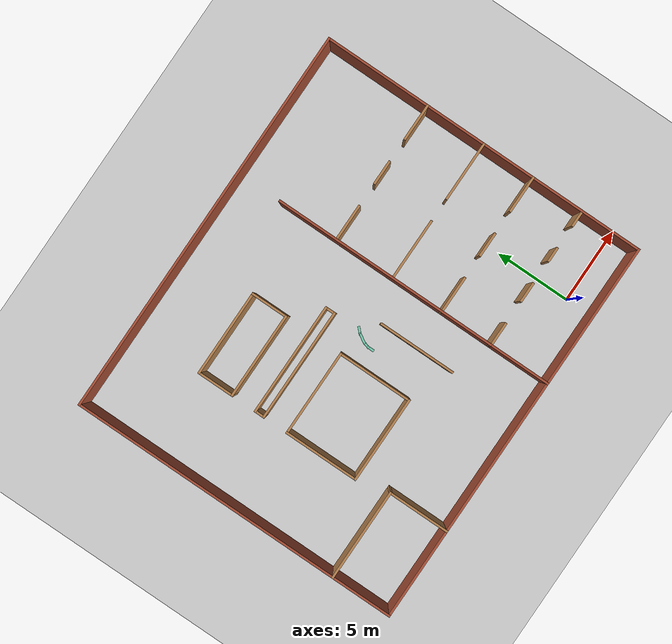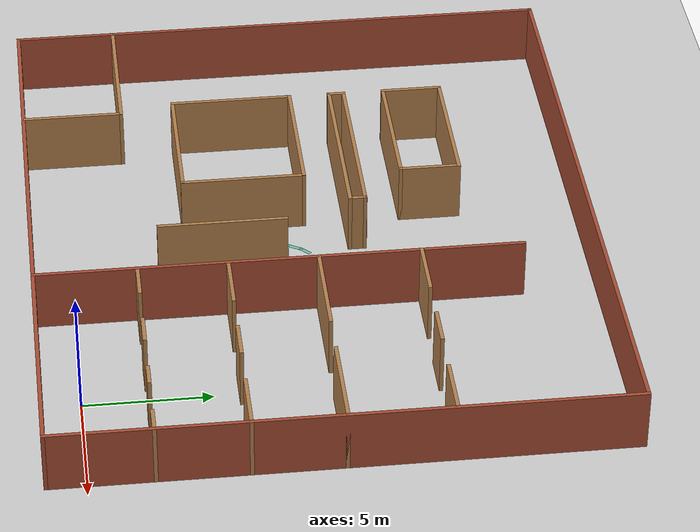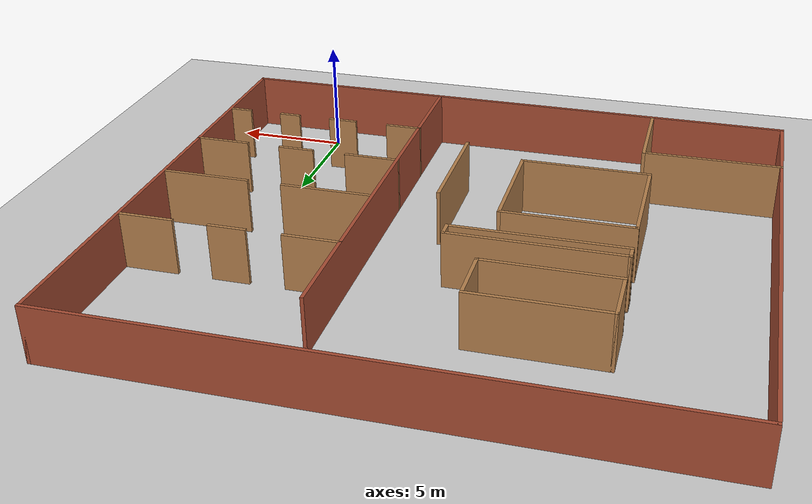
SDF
<sdf version="1.6">
 <world name="default">
  <model name="ground_plane">
   <static>1</static>
   <link name="link">
    <collision name="collision">
     <geometry><plane><normal>0 0 1</normal><size>100 100</size></plane></geometry>
     <surface><friction><ode><mu>100</mu><mu2>50</mu2></ode></friction></surface>
    </collision>
    <visual name="visual">
     <cast_shadows>0</cast_shadows>
     <geometry><plane><normal>0 0 1</normal><size>100 100</size></plane></geometry>
     <material>
      <script><uri>file://media/materials/scripts/gazebo.material</uri><name>Gazebo/Grey</name></script>
     </material>
    </visual>
   </link>
  </model>
  <model name="POMDP_test">
   <pose>-8.50001 9.50001 0 0 0 -3.14159</pose>
   <link name="Wall_11">
    <collision name="Wall_11_Collision">
     <geometry><box><size>5.75 0.15 2.5</size></box></geometry>
     <pose>0 0 1.25 0 -0 0</pose>
    </collision>
    <visual name="Wall_11_Visual">
     <pose>0 0 1.25 0 -0 0</pose>
     <geometry><box><size>5.75 0.15 2.5</size></box></geometry>
     <material>
      <script><uri>file://media/materials/scripts/gazebo.material</uri><name>Gazebo/Wood</name></script>
      <ambient>1 1 1 1</ambient>
     </material>
     <meta><layer>0</layer></meta>
    </visual>
    <pose>4.7 4.85 0 0 -0 0</pose>
   </link>
   <link name="Wall_12">
    <collision name="Wall_12_Collision">
     <geometry><box><size>5 0.15 2.5</size></box></geometry>
     <pose>0 0 1.25 0 -0 0</pose>
    </collision>
    <visual name="Wall_12_Visual">
     <pose>0 0 1.25 0 -0 0</pose>
     <geometry><box><size>5 0.15 2.5</size></box></geometry>
     <material>
      <script><uri>file://media/materials/scripts/gazebo.material</uri><name>Gazebo/Wood</name></script>
      <ambient>1 1 1 1</ambient>
     </material>
     <meta><layer>0</layer></meta>
    </visual>
    <pose>7.5 2.425 0 0 -0 -1.5708</pose>
   </link>
   <link name="Wall_13">
    <collision name="Wall_13_Collision">
     <geometry><box><size>5.75 0.15 2.5</size></box></geometry>
     <pose>0 0 1.25 0 -0 0</pose>
    </collision>
    <visual name="Wall_13_Visual">
     <pose>0 0 1.25 0 -0 0</pose>
     <geometry><box><size>5.75 0.15 2.5</size></box></geometry>
     <material>
      <script><uri>file://media/materials/scripts/gazebo.material</uri><name>Gazebo/Wood</name></script>
      <ambient>1 1 1 1</ambient>
     </material>
     <meta><layer>0</layer></meta>
    </visual>
    <pose>4.7 0 0 0 -0 3.14159</pose>
   </link>
   <link name="Wall_14">
    <collision name="Wall_14_Collision">
     <geometry><box><size>5 0.15 2.5</size></box></geometry>
     <pose>0 0 1.25 0 -0 0</pose>
    </collision>
    <visual name="Wall_14_Visual">
     <pose>0 0 1.25 0 -0 0</pose>
     <geometry><box><size>5 0.15 2.5</size></box></geometry>
     <material>
      <script><uri>file://media/materials/scripts/gazebo.material</uri><name>Gazebo/Wood</name></script>
      <ambient>1 1 1 1</ambient>
     </material>
     <meta><layer>0</layer></meta>
    </visual>
    <pose>1.9 2.425 0 0 -0 1.5708</pose>
   </link>
   <link name="Wall_18">
    <collision name="Wall_18_Collision">
     <geometry><box><size>7.5 0.15 2.5</size></box></geometry>
     <pose>0 0 1.25 0 -0 0</pose>
    </collision>
    <visual name="Wall_18_Visual">
     <pose>0 0 1.25 0 -0 0</pose>
     <geometry><box><size>7.5 0.15 2.5</size></box></geometry>
     <material>
      <script><uri>file://media/materials/scripts/gazebo.material</uri><name>Gazebo/Wood</name></script>
      <ambient>1 1 1 1</ambient>
     </material>
     <meta><layer>0</layer></meta>
    </visual>
    <pose>3.825 -1.65 0 0 -0 3.14159</pose>
   </link>
   <link name="Wall_19">
    <collision name="Wall_19_Collision">
     <geometry><box><size>0.75 0.15 2.5</size></box></geometry>
     <pose>0 0 1.25 0 -0 0</pose>
    </collision>
    <visual name="Wall_19_Visual">
     <pose>0 0 1.25 0 -0 0</pose>
     <geometry><box><size>0.75 0.15 2.5</size></box></geometry>
     <material>
      <script><uri>file://media/materials/scripts/gazebo.material</uri><name>Gazebo/Wood</name></script>
      <ambient>1 1 1 1</ambient>
     </material>
     <meta><layer>0</layer></meta>
    </visual>
    <pose>0.15 -1.95 0 0 -0 -1.5708</pose>
   </link>
   <link name="Wall_20">
    <collision name="Wall_20_Collision">
     <geometry><box><size>7.5 0.15 2.5</size></box></geometry>
     <pose>0 0 1.25 0 -0 0</pose>
    </collision>
    <visual name="Wall_20_Visual">
     <pose>0 0 1.25 0 -0 0</pose>
     <geometry><box><size>7.5 0.15 2.5</size></box></geometry>
     <material>
      <script><uri>file://media/materials/scripts/gazebo.material</uri><name>Gazebo/Wood</name></script>
      <ambient>1 1 1 1</ambient>
     </material>
     <meta><layer>0</layer></meta>
    </visual>
    <pose>3.825 -2.25 0 0 -0 0</pose>
   </link>
   <link name="Wall_21">
    <collision name="Wall_21_Collision">
     <geometry><box><size>0.75 0.15 2.5</size></box></geometry>
     <pose>0 0 1.25 0 -0 0</pose>
    </collision>
    <visual name="Wall_21_Visual">
     <pose>0 0 1.25 0 -0 0</pose>
     <geometry><box><size>0.75 0.15 2.5</size></box></geometry>
     <material>
      <script><uri>file://media/materials/scripts/gazebo.material</uri><name>Gazebo/Wood</name></script>
      <ambient>1 1 1 1</ambient>
     </material>
     <meta><layer>0</layer></meta>
    </visual>
    <pose>7.5 -1.95 0 0 -0 1.5708</pose>
   </link>
   <link name="Wall_25">
    <collision name="Wall_25_Collision">
     <geometry><box><size>5.75 0.15 2.5</size></box></geometry>
     <pose>0 0 1.25 0 -0 0</pose>
    </collision>
    <visual name="Wall_25_Visual">
     <pose>0 0 1.25 0 -0 0</pose>
     <geometry><box><size>5.75 0.15 2.5</size></box></geometry>
     <material>
      <script><uri>file://media/materials/scripts/gazebo.material</uri><name>Gazebo/Wood</name></script>
      <ambient>1 1 1 1</ambient>
     </material>
     <meta><layer>0</layer></meta>
    </visual>
    <pose>4.7 -3.9 0 0 -0 3.14159</pose>
   </link>
   <link name="Wall_27">
    <collision name="Wall_27_Collision">
     <geometry><box><size>2.5 0.15 2.5</size></box></geometry>
     <pose>0 0 1.25 0 -0 0</pose>
    </collision>
    <visual name="Wall_27_Visual">
     <pose>0 0 1.25 0 -0 0</pose>
     <geometry><box><size>2.5 0.15 2.5</size></box></geometry>
     <material>
      <script><uri>file://media/materials/scripts/gazebo.material</uri><name>Gazebo/Wood</name></script>
      <ambient>1 1 1 1</ambient>
     </material>
     <meta><layer>0</layer></meta>
    </visual>
    <pose>1.9 -5.075 0 0 -0 -1.5708</pose>
   </link>
   <link name="Wall_28">
    <collision name="Wall_28_Collision">
     <geometry><box><size>5.75 0.15 2.5</size></box></geometry>
     <pose>0 0 1.25 0 -0 0</pose>
    </collision>
    <visual name="Wall_28_Visual">
     <pose>0 0 1.25 0 -0 0</pose>
     <geometry><box><size>5.75 0.15 2.5</size></box></geometry>
     <material>
      <script><uri>file://media/materials/scripts/gazebo.material</uri><name>Gazebo/Wood</name></script>
      <ambient>1 1 1 1</ambient>
     </material>
     <meta><layer>0</layer></meta>
    </visual>
    <pose>4.7 -6.25 0 0 -0 0</pose>
   </link>
   <link name="Wall_29">
    <collision name="Wall_29_Collision">
     <geometry><box><size>2.5 0.15 2.5</size></box></geometry>
     <pose>0 0 1.25 0 -0 0</pose>
    </collision>
    <visual name="Wall_29_Visual">
     <pose>0 0 1.25 0 -0 0</pose>
     <geometry><box><size>2.5 0.15 2.5</size></box></geometry>
     <material>
      <script><uri>file://media/materials/scripts/gazebo.material</uri><name>Gazebo/Wood</name></script>
      <ambient>1 1 1 1</ambient>
     </material>
     <meta><layer>0</layer></meta>
    </visual>
    <pose>7.5 -5.075 0 0 -0 1.5708</pose>
   </link>
   <link name="Wall_33">
    <collision name="Wall_33_Collision">
     <geometry><box><size>19.15 0.15 2.5</size></box></geometry>
     <pose>0 0 1.25 0 -0 0</pose>
    </collision>
    <visual name="Wall_33_Visual">
     <pose>0 0 1.25 0 -0 0</pose>
     <geometry><box><size>19.15 0.15 2.5</size></box></geometry>
     <material>
      <script><uri>file://media/materials/scripts/gazebo.material</uri><name>Gazebo/Bricks</name></script>
      <ambient>1 1 1 1</ambient>
     </material>
     <meta><layer>0</layer></meta>
    </visual>
    <pose>-3.5 1.5 0 0 -0 1.5708</pose>
   </link>
   <link name="Wall_35">
    <collision name="Wall_35_Collision">
     <geometry><box><size>6.15 0.15 2.5</size></box></geometry>
     <pose>0 0 1.25 0 -0 0</pose>
    </collision>
    <visual name="Wall_35_Visual">
     <pose>0 0 1.25 0 -0 0</pose>
     <geometry><box><size>6.15 0.15 2.5</size></box></geometry>
     <material>
      <script><uri>file://media/materials/scripts/gazebo.material</uri><name>Gazebo/Wood</name></script>
      <ambient>1 1 1 1</ambient>
     </material>
     <meta><layer>0</layer></meta>
    </visual>
    <pose>10 7 0 0 -0 3.14159</pose>
   </link>
   <link name="Wall_36">
    <collision name="Wall_36_Collision">
     <geometry><box><size>4.15 0.15 2.5</size></box></geometry>
     <pose>0 0 1.25 0 -0 0</pose>
    </collision>
    <visual name="Wall_36_Visual">
     <pose>0 0 1.25 0 -0 0</pose>
     <geometry><box><size>4.15 0.15 2.5</size></box></geometry>
     <material>
      <script><uri>file://media/materials/scripts/gazebo.material</uri><name>Gazebo/Wood</name></script>
      <ambient>1 1 1 1</ambient>
     </material>
     <meta><layer>0</layer></meta>
    </visual>
    <pose>7 9 0 0 -0 1.5708</pose>
   </link>
   <link name="Wall_38">
    <collision name="Wall_38_Collision">
     <geometry><box><size>5.15 0.15 2.5</size></box></geometry>
     <pose>0 0 1.25 0 -0 0</pose>
    </collision>
    <visual name="Wall_38_Visual">
     <pose>0 0 1.25 0 -0 0</pose>
     <geometry><box><size>5.15 0.15 2.5</size></box></geometry>
     <material>
      <script><uri>file://media/materials/scripts/gazebo.material</uri><name>Gazebo/Wood</name></script>
      <ambient>1 1 1 1</ambient>
     </material>
     <meta><layer>0</layer></meta>
    </visual>
    <pose>-0.9 3.5 0 0 -0 -1.5708</pose>
   </link>
   <link name="Wall_4">
    <collision name="Wall_4_Collision">
     <geometry><box><size>26.15 0.15 2.5</size></box></geometry>
     <pose>0 0 1.25 0 -0 0</pose>
    </collision>
    <visual name="Wall_4_Visual">
     <pose>0 0 1.25 0 -0 0</pose>
     <geometry><box><size>26.15 0.15 2.5</size></box></geometry>
     <material>
      <script><uri>file://media/materials/scripts/gazebo.material</uri><name>Gazebo/Bricks</name></script>
      <ambient>1 1 1 1</ambient>
     </material>
     <meta><layer>0</layer></meta>
    </visual>
    <pose>0 -11 0 0 -0 0</pose>
   </link>
   <link name="Wall_40">
    <collision name="Wall_40_Collision">
     <geometry><box><size>1.15 0.15 2.5</size></box></geometry>
     <pose>0 0 1.25 0 -0 0</pose>
    </collision>
    <visual name="Wall_40_Visual">
     <pose>0 0 1.25 0 -0 0</pose>
     <geometry><box><size>1.15 0.15 2.5</size></box></geometry>
     <material>
      <script><uri>file://media/materials/scripts/gazebo.material</uri><name>Gazebo/Wood</name></script>
      <ambient>1 1 1 1</ambient>
     </material>
     <meta><layer>0</layer></meta>
    </visual>
    <pose>-12.5 7 0 0 -0 0</pose>
   </link>
   <link name="Wall_42">
    <collision name="Wall_42_Collision">
     <geometry><box><size>1 0.15 2.5</size></box></geometry>
     <pose>0 0 1.25 0 -0 0</pose>
    </collision>
    <visual name="Wall_42_Visual">
     <pose>0 0 1.25 0 -0 0</pose>
     <geometry><box><size>1 0.15 2.5</size></box></geometry>
     <material>
      <script><uri>file://media/materials/scripts/gazebo.material</uri><name>Gazebo/Wood</name></script>
      <ambient>1 1 1 1</ambient>
     </material>
     <meta><layer>0</layer></meta>
    </visual>
    <pose>-9.925 7 0 0 -0 0</pose>
   </link>
   <link name="Wall_44">
    <collision name="Wall_44_Collision">
     <geometry><box><size>1.35 0.15 2.5</size></box></geometry>
     <pose>0 0 1.25 0 -0 0</pose>
    </collision>
    <visual name="Wall_44_Visual">
     <pose>0 0 1.25 0 -0 0</pose>
     <geometry><box><size>1.35 0.15 2.5</size></box></geometry>
     <material>
      <script><uri>file://media/materials/scripts/gazebo.material</uri><name>Gazebo/Wood</name></script>
      <ambient>1 1 1 1</ambient>
     </material>
     <meta><layer>0</layer></meta>
    </visual>
    <pose>-7.25 7 0 0 -0 0</pose>
   </link>
   <link name="Wall_46">
    <collision name="Wall_46_Collision">
     <geometry><box><size>1.65 0.15 2.5</size></box></geometry>
     <pose>0 0 1.25 0 -0 0</pose>
    </collision>
    <visual name="Wall_46_Visual">
     <pose>0 0 1.25 0 -0 0</pose>
     <geometry><box><size>1.65 0.15 2.5</size></box></geometry>
     <material>
      <script><uri>file://media/materials/scripts/gazebo.material</uri><name>Gazebo/Wood</name></script>
      <ambient>1 1 1 1</ambient>
     </material>
     <meta><layer>0</layer></meta>
    </visual>
    <pose>-4.25 7 0 0 -0 0</pose>
   </link>
   <link name="Wall_50">
    <collision name="Wall_50_Collision">
     <geometry><box><size>2.5 0.15 2.5</size></box></geometry>
     <pose>0 0 1.25 0 -0 0</pose>
    </collision>
    <visual name="Wall_50_Visual">
     <pose>0 0 1.25 0 -0 0</pose>
     <geometry><box><size>2.5 0.15 2.5</size></box></geometry>
     <material>
      <script><uri>file://media/materials/scripts/gazebo.material</uri><name>Gazebo/Wood</name></script>
      <ambient>1 1 1 1</ambient>
     </material>
     <meta><layer>0</layer></meta>
    </visual>
    <pose>-11.825 3.5 0 0 -0 0</pose>
   </link>
   <link name="Wall_53">
    <collision name="Wall_53_Collision">
     <geometry><box><size>1.65 0.15 2.5</size></box></geometry>
     <pose>0 0 1.25 0 -0 0</pose>
    </collision>
    <visual name="Wall_53_Visual">
     <pose>0 0 1.25 0 -0 0</pose>
     <geometry><box><size>1.65 0.15 2.5</size></box></geometry>
     <material>
      <script><uri>file://media/materials/scripts/gazebo.material</uri><name>Gazebo/Wood</name></script>
      <ambient>1 1 1 1</ambient>
     </material>
     <meta><layer>0</layer></meta>
    </visual>
    <pose>-8.25 3.5 0 0 -0 0</pose>
   </link>
   <link name="Wall_55">
    <collision name="Wall_55_Collision">
     <geometry><box><size>2.5 0.15 2.5</size></box></geometry>
     <pose>0 0 1.25 0 -0 0</pose>
    </collision>
    <visual name="Wall_55_Visual">
     <pose>0 0 1.25 0 -0 0</pose>
     <geometry><box><size>2.5 0.15 2.5</size></box></geometry>
     <material>
      <script><uri>file://media/materials/scripts/gazebo.material</uri><name>Gazebo/Wood</name></script>
      <ambient>1 1 1 1</ambient>
     </material>
     <meta><layer>0</layer></meta>
    </visual>
    <pose>-4.675 3.5 0 0 -0 0</pose>
   </link>
   <link name="Wall_57">
    <collision name="Wall_57_Collision">
     <geometry><box><size>4 0.15 2.5</size></box></geometry>
     <pose>0 0 1.25 0 -0 0</pose>
    </collision>
    <visual name="Wall_57_Visual">
     <pose>0 0 1.25 0 -0 0</pose>
     <geometry><box><size>4 0.15 2.5</size></box></geometry>
     <material>
      <script><uri>file://media/materials/scripts/gazebo.material</uri><name>Gazebo/Wood</name></script>
      <ambient>1 1 1 1</ambient>
     </material>
     <meta><layer>0</layer></meta>
    </visual>
    <pose>-11.075 0 0 0 -0 0</pose>
   </link>
   <link name="Wall_59">
    <collision name="Wall_59_Collision">
     <geometry><box><size>4.15 0.15 2.5</size></box></geometry>
     <pose>0 0 1.25 0 -0 0</pose>
    </collision>
    <visual name="Wall_59_Visual">
     <pose>0 0 1.25 0 -0 0</pose>
     <geometry><box><size>4.15 0.15 2.5</size></box></geometry>
     <material>
      <script><uri>file://media/materials/scripts/gazebo.material</uri><name>Gazebo/Wood</name></script>
      <ambient>1 1 1 1</ambient>
     </material>
     <meta><layer>0</layer></meta>
    </visual>
    <pose>-5.5 0 0 0 -0 0</pose>
   </link>
   <link name="Wall_6">
    <collision name="Wall_6_Collision">
     <geometry><box><size>22.15 0.15 2.5</size></box></geometry>
     <pose>0 0 1.25 0 -0 0</pose>
    </collision>
    <visual name="Wall_6_Visual">
     <pose>0 0 1.25 0 -0 0</pose>
     <geometry><box><size>22.15 0.15 2.5</size></box></geometry>
     <material>
      <script><uri>file://media/materials/scripts/gazebo.material</uri><name>Gazebo/Bricks</name></script>
      <ambient>1 1 1 1</ambient>
     </material>
     <meta><layer>0</layer></meta>
    </visual>
    <pose>13 0 0 0 -0 1.5708</pose>
   </link>
   <link name="Wall_61">
    <collision name="Wall_61_Collision">
     <geometry><box><size>2.5 0.15 2.5</size></box></geometry>
     <pose>0 0 1.25 0 -0 0</pose>
    </collision>
    <visual name="Wall_61_Visual">
     <pose>0 0 1.25 0 -0 0</pose>
     <geometry><box><size>2.5 0.15 2.5</size></box></geometry>
     <material>
      <script><uri>file://media/materials/scripts/gazebo.material</uri><name>Gazebo/Wood</name></script>
      <ambient>1 1 1 1</ambient>
     </material>
     <meta><layer>0</layer></meta>
    </visual>
    <pose>-11.825 -4 0 0 -0 0</pose>
   </link>
   <link name="Wall_63">
    <collision name="Wall_63_Collision">
     <geometry><box><size>1.65 0.15 2.5</size></box></geometry>
     <pose>0 0 1.25 0 -0 0</pose>
    </collision>
    <visual name="Wall_63_Visual">
     <pose>0 0 1.25 0 -0 0</pose>
     <geometry><box><size>1.65 0.15 2.5</size></box></geometry>
     <material>
      <script><uri>file://media/materials/scripts/gazebo.material</uri><name>Gazebo/Wood</name></script>
      <ambient>1 1 1 1</ambient>
     </material>
     <meta><layer>0</layer></meta>
    </visual>
    <pose>-8.25 -4 0 0 -0 0</pose>
   </link>
   <link name="Wall_65">
    <collision name="Wall_65_Collision">
     <geometry><box><size>2.5 0.15 2.5</size></box></geometry>
     <pose>0 0 1.25 0 -0 0</pose>
    </collision>
    <visual name="Wall_65_Visual">
     <pose>0 0 1.25 0 -0 0</pose>
     <geometry><box><size>2.5 0.15 2.5</size></box></geometry>
     <material>
      <script><uri>file://media/materials/scripts/gazebo.material</uri><name>Gazebo/Wood</name></script>
      <ambient>1 1 1 1</ambient>
     </material>
     <meta><layer>0</layer></meta>
    </visual>
    <pose>-4.675 -4 0 0 -0 0</pose>
   </link>
   <link name="Wall_8">
    <collision name="Wall_8_Collision">
     <geometry><box><size>26.15 0.15 2.5</size></box></geometry>
     <pose>0 0 1.25 0 -0 0</pose>
    </collision>
    <visual name="Wall_8_Visual">
     <pose>0 0 1.25 0 -0 0</pose>
     <geometry><box><size>26.15 0.15 2.5</size></box></geometry>
     <material>
      <script><uri>file://media/materials/scripts/gazebo.material</uri><name>Gazebo/Bricks</name></script>
      <ambient>1 1 1 1</ambient>
     </material>
     <meta><layer>0</layer></meta>
    </visual>
    <pose>0 11 0 0 -0 3.14159</pose>
   </link>
   <link name="Wall_9">
    <collision name="Wall_9_Collision">
     <geometry><box><size>22.15 0.15 2.5</size></box></geometry>
     <pose>0 0 1.25 0 -0 0</pose>
    </collision>
    <visual name="Wall_9_Visual">
     <pose>0 0 1.25 0 -0 0</pose>
     <geometry><box><size>22.15 0.15 2.5</size></box></geometry>
     <material>
      <script><uri>file://media/materials/scripts/gazebo.material</uri><name>Gazebo/Bricks</name></script>
      <ambient>1 1 1 1</ambient>
     </material>
     <meta><layer>0</layer></meta>
    </visual>
    <pose>-13 0 0 0 -0 -1.5708</pose>
   </link>
   <static>1</static>
  </model>
  <model name="pomdp_path">
   <link name="Wall_208">
    <pose>0.45352 0.53948 0 0 -0 1.0472</pose>
    <visual name="Wall_208_Visual">
     <pose>0 0 0.0001 0 -0 0</pose>
     <geometry><box><size>0.75 0.15 0</size></box></geometry>
     <material>
      <script><uri>file://media/materials/scripts/gazebo.material</uri><name>Gazebo/Grey</name></script>
      <ambient>0.435294 0.796078 0.67451 1</ambient>
      <shader type="pixel"/>
     </material>
     <meta><layer>0</layer></meta>
    </visual>
    <collision name="Wall_208_Collision">
     <pose>0 0 0.0001 0 -0 0</pose>
     <geometry><box><size>0.75 0.15 0</size></box></geometry>
     <surface>
      <friction>
       <ode><mu>1</mu><mu2>1</mu2><fdir1>0 0 0</fdir1><slip1>0</slip1><slip2>0</slip2></ode>
       <torsional>
        <coefficient>1</coefficient>
        <patch_radius>0</patch_radius>
        <surface_radius>0</surface_radius>
        <use_patch_radius>1</use_patch_radius>
        <ode><slip>0</slip></ode>
       </torsional>
      </friction>
      <bounce><restitution_coefficient>0</restitution_coefficient><threshold>1e+06</threshold></bounce>
      <contact>
       <collide_without_contact>0</collide_without_contact>
       <collide_without_contact_bitmask>1</collide_without_contact_bitmask>
       <collide_bitmask>1</collide_bitmask>
       <ode>
        <soft_cfm>0</soft_cfm>
        <soft_erp>0.2</soft_erp>
        <kp>1e+13</kp>
        <kd>1</kd>
        <max_vel>0.01</max_vel>
        <min_depth>0</min_depth>
       </ode>
       <bullet>
        <split_impulse>1</split_impulse>
        <split_impulse_penetration_threshold>-0.01</split_impulse_penetration_threshold>
        <soft_cfm>0</soft_cfm>
        <soft_erp>0.2</soft_erp>
        <kp>1e+13</kp>
        <kd>1</kd>
       </bullet>
      </contact>
     </surface>
    </collision>
   </link>
   <link name="Wall_209">
    <pose>0.648813 0.968324 0 0 -0 1.309</pose>
    <visual name="Wall_209_Visual">
     <pose>0 0 0.0001 0 -0 0</pose>
     <geometry><box><size>0.5 0.15 0</size></box></geometry>
     <material>
      <script><uri>file://media/materials/scripts/gazebo.material</uri><name>Gazebo/Grey</name></script>
      <ambient>0.435294 0.796078 0.67451 1</ambient>
      <shader type="pixel"/>
     </material>
     <meta><layer>0</layer></meta>
    </visual>
    <collision name="Wall_209_Collision">
     <pose>0 0 0.0001 0 -0 0</pose>
     <geometry><box><size>0.5 0.15 0</size></box></geometry>
     <surface>
      <friction>
       <ode><mu>1</mu><mu2>1</mu2><fdir1>0 0 0</fdir1><slip1>0</slip1><slip2>0</slip2></ode>
       <torsional>
        <coefficient>1</coefficient>
        <patch_radius>0</patch_radius>
        <surface_radius>0</surface_radius>
        <use_patch_radius>1</use_patch_radius>
        <ode><slip>0</slip></ode>
       </torsional>
      </friction>
      <bounce><restitution_coefficient>0</restitution_coefficient><threshold>1e+06</threshold></bounce>
      <contact>
       <collide_without_contact>0</collide_without_contact>
       <collide_without_contact_bitmask>1</collide_without_contact_bitmask>
       <collide_bitmask>1</collide_bitmask>
       <ode>
        <soft_cfm>0</soft_cfm>
        <soft_erp>0.2</soft_erp>
        <kp>1e+13</kp>
        <kd>1</kd>
        <max_vel>0.01</max_vel>
        <min_depth>0</min_depth>
       </ode>
       <bullet>
        <split_impulse>1</split_impulse>
        <split_impulse_penetration_threshold>-0.01</split_impulse_penetration_threshold>
        <soft_cfm>0</soft_cfm>
        <soft_erp>0.2</soft_erp>
        <kp>1e+13</kp>
        <kd>1</kd>
       </bullet>
      </contact>
     </surface>
    </collision>
   </link>
   <link name="Wall_210">
    <pose>0.694107 1.31236 0 0 -0 1.5708</pose>
    <visual name="Wall_210_Visual">
     <pose>0 0 0.0001 0 -0 0</pose>
     <geometry><box><size>0.5 0.15 0</size></box></geometry>
     <material>
      <script><uri>file://media/materials/scripts/gazebo.material</uri><name>Gazebo/Grey</name></script>
      <ambient>0.435294 0.796078 0.67451 1</ambient>
      <shader type="pixel"/>
     </material>
     <meta><layer>0</layer></meta>
    </visual>
    <collision name="Wall_210_Collision">
     <pose>0 0 0.0001 0 -0 0</pose>
     <geometry><box><size>0.5 0.15 0</size></box></geometry>
     <surface>
      <friction>
       <ode><mu>1</mu><mu2>1</mu2><fdir1>0 0 0</fdir1><slip1>0</slip1><slip2>0</slip2></ode>
       <torsional>
        <coefficient>1</coefficient>
        <patch_radius>0</patch_radius>
        <surface_radius>0</surface_radius>
        <use_patch_radius>1</use_patch_radius>
        <ode><slip>0</slip></ode>
       </torsional>
      </friction>
      <bounce><restitution_coefficient>0</restitution_coefficient><threshold>1e+06</threshold></bounce>
      <contact>
       <collide_without_contact>0</collide_without_contact>
       <collide_without_contact_bitmask>1</collide_without_contact_bitmask>
       <collide_bitmask>1</collide_bitmask>
       <ode>
        <soft_cfm>0</soft_cfm>
        <soft_erp>0.2</soft_erp>
        <kp>1e+13</kp>
        <kd>1</kd>
        <max_vel>0.01</max_vel>
        <min_depth>0</min_depth>
       </ode>
       <bullet>
        <split_impulse>1</split_impulse>
        <split_impulse_penetration_threshold>-0.01</split_impulse_penetration_threshold>
        <soft_cfm>0</soft_cfm>
        <soft_erp>0.2</soft_erp>
        <kp>1e+13</kp>
        <kd>1</kd>
       </bullet>
      </contact>
     </surface>
    </collision>
   </link>
   <link name="Wall_258">
    <pose>0.162099 0.138251 0 0 -0 0.785398</pose>
    <visual name="Wall_258_Visual">
     <pose>0 0 0.0001 0 -0 0</pose>
     <geometry><box><size>0.55 0.15 0</size></box></geometry>
     <material>
      <script><uri>file://media/materials/scripts/gazebo.material</uri><name>Gazebo/Grey</name></script>
      <ambient>0.435294 0.796078 0.67451 1</ambient>
      <shader type="pixel"/>
     </material>
     <meta><layer>0</layer></meta>
    </visual>
    <collision name="Wall_258_Collision">
     <pose>0 0 0.0001 0 -0 0</pose>
     <geometry><box><size>0.55 0.15 0</size></box></geometry>
     <surface>
      <friction>
       <ode><mu>1</mu><mu2>1</mu2><fdir1>0 0 0</fdir1><slip1>0</slip1><slip2>0</slip2></ode>
       <torsional>
        <coefficient>1</coefficient>
        <patch_radius>0</patch_radius>
        <surface_radius>0</surface_radius>
        <use_patch_radius>1</use_patch_radius>
        <ode><slip>0</slip></ode>
       </torsional>
      </friction>
      <bounce><restitution_coefficient>0</restitution_coefficient><threshold>1e+06</threshold></bounce>
      <contact>
       <collide_without_contact>0</collide_without_contact>
       <collide_without_contact_bitmask>1</collide_without_contact_bitmask>
       <collide_bitmask>1</collide_bitmask>
       <ode>
        <soft_cfm>0</soft_cfm>
        <soft_erp>0.2</soft_erp>
        <kp>1e+13</kp>
        <kd>1</kd>
        <max_vel>0.01</max_vel>
        <min_depth>0</min_depth>
       </ode>
       <bullet>
        <split_impulse>1</split_impulse>
        <split_impulse_penetration_threshold>-0.01</split_impulse_penetration_threshold>
        <soft_cfm>0</soft_cfm>
        <soft_erp>0.2</soft_erp>
        <kp>1e+13</kp>
        <kd>1</kd>
       </bullet>
      </contact>
     </surface>
    </collision>
   </link>
   <static>1</static>
   <pose>-8.49995 9.50005 0 0 -0 3.14159</pose>
  </model>
 </world>
</sdf>
